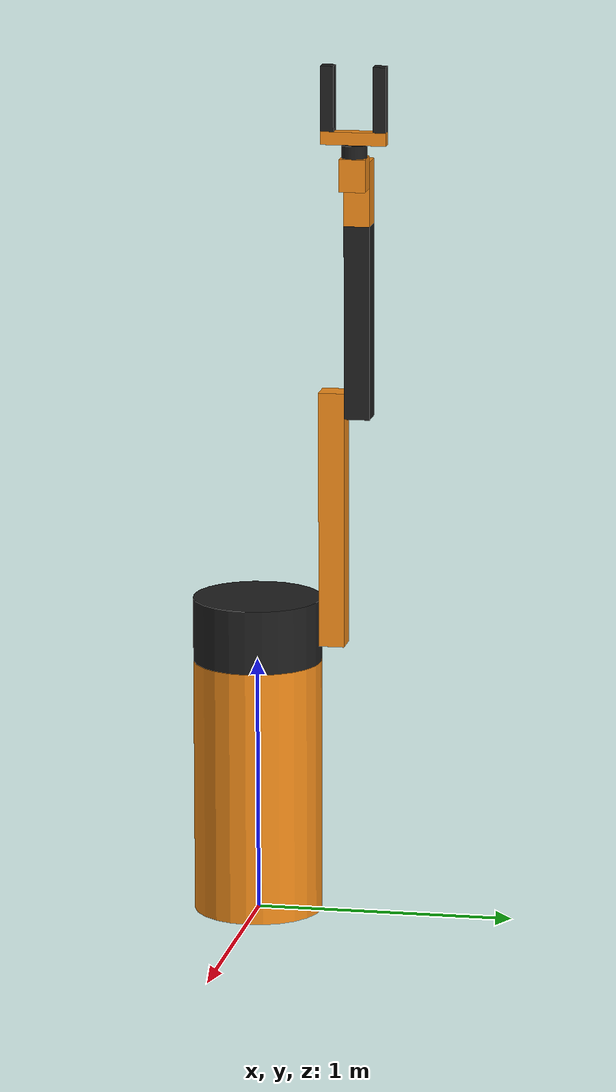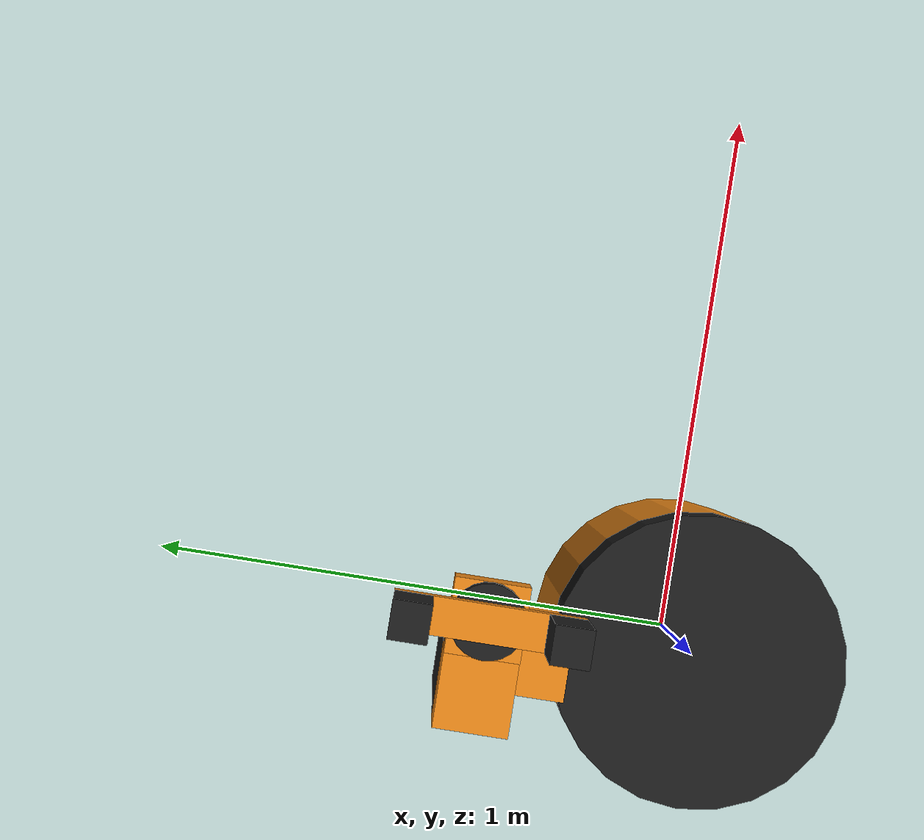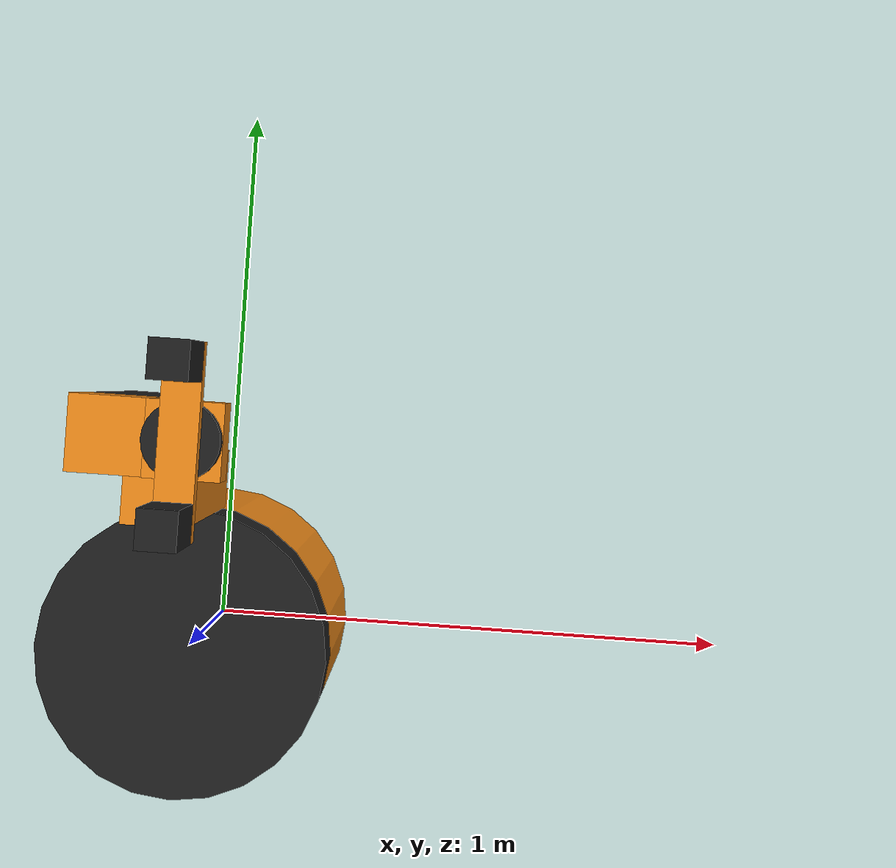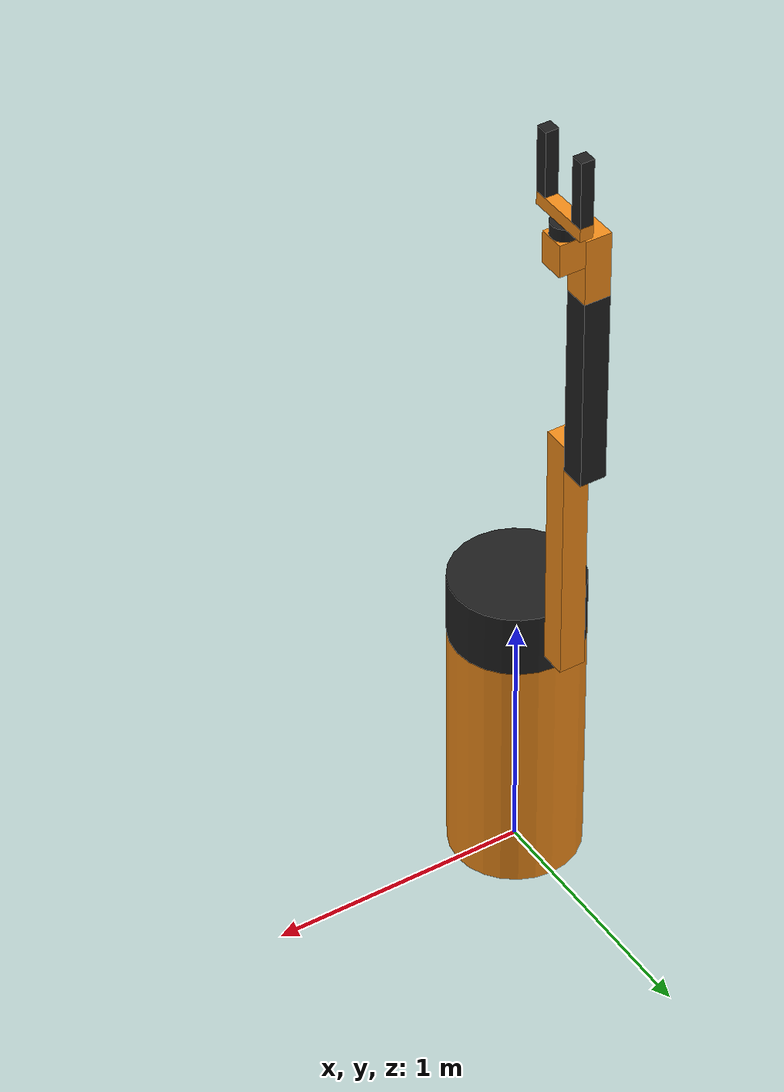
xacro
<?xml version="1.0"?>
<!-- Revolute-Revolute Manipulator -->
<robot name="manip_6_dof" xmlns:xacro="http://www.ros.org/wiki/xacro">

  <!-- Constants for robot dimensions -->
  <xacro:property name="PI" value="3.1415926535897931"/>
  <xacro:property name="mass" value="1" /> <!-- arbitrary value for mass -->
  <xacro:property name="w1" value="0.1" /> <!-- Square dimensions (widthxwidth) of beams -->
  <xacro:property name="l0" value="1" /> <!-- Link 3 -->
  <xacro:property name="l1" value="0.25" /> <!-- Link 1 -->
  <xacro:property name="l2" value="1" /> <!-- Link 2 -->
  <xacro:property name="l3" value="0.75" /> <!-- Link 3 -->
  <xacro:property name="l4" value="0.25" /> <!-- Link 3 -->
  <xacro:property name="l5" value="0.125" /> <!-- Link 3 -->
  <xacro:property name="l6" value="0.05" /> <!-- Link 3 -->
  <xacro:property name="r0" value="0.25" /> <!-- Link 3 -->
  <xacro:property name="r6" value="0.05" /> <!-- Link 3 -->
  <xacro:property name="l_palm" value="0.25" /> <!-- Link 3 -->
  <xacro:property name="w_palm" value="0.05" /> <!-- Link 3 -->
  <xacro:property name="camera_link" value="0.05" /> <!-- Size of square 'camera' box -->
  <xacro:property name="axel_offset" value="0.05" /> <!-- Space btw top of beam and the each joint -->

  <!-- Import all Gazebo-customization elements, including Gazebo colors -->
  <xacro:include filename="$(find manip_6_dof)/src/urdf/rrbot.gazebo" />
  <!-- Import Rviz colors -->
  <xacro:include filename="$(find manip_6_dof)/src/urdf/materials.xacro" />

  <!-- Used for fixing robot to Gazebo 'base_link' -->
  <link name="world"/>

  <joint name="base" type="fixed">
    <parent link="world"/>
    <child link="l0"/>
  </joint>

  <!-- Base Link -->
  <link name="l0">
    <collision>
      <origin xyz="0 0 ${l0/2}" rpy="0 0 0"/>
      <geometry>
  <cylinder length="${l0}" radius="${r0}" />
      </geometry>
    </collision>

    <visual>
      <origin xyz="0 0 ${l0/2}" rpy="0 0 0"/>
      <geometry>
  <cylinder length="${l0}" radius="${r0}" />
      </geometry>
      <material name="orange"/>
    </visual>

    <inertial>
      <origin xyz="0 0 ${l0/2}" rpy="0 0 0"/>
      <mass value="${mass}"/>
      <inertia
    ixx="${mass / 12.0 * (w1*w1 + l1*l1)}" ixy="0.0" ixz="0.0"
    iyy="${mass / 12.0 * (l1*l1 + w1*w1)}" iyz="0.0"
    izz="${mass / 12.0 * (w1*w1 + w1*w1)}"/>
    </inertial>
  </link>

  <joint name="j1" type="revolute">
    <parent link="l0"/>
    <child link="l1"/>
    <origin xyz="0 0 ${l0}" rpy="0 0 0"/>
    <limit effort="1000.0" lower="-3.14" upper="3.14" velocity="0.5"/>
    <axis xyz="0 0 1"/>
    <dynamics damping="0.7"/>
  </joint>

  <link name="l1">
    <collision>
      <origin xyz="0 0 ${l1/2}" rpy="0 0 0"/>
      <geometry>
  <cylinder length="${l1}" radius="${r0}" />
      </geometry>
    </collision>

    <visual>
      <origin xyz="0 0 ${l1/2}" rpy="0 0 0"/>
      <geometry>
  <cylinder length="${l1}" radius="${r0}" />
      </geometry>
      <material name="black"/>
    </visual>

    <inertial>
      <origin xyz="0 0 ${l1/2}" rpy="0 0 0"/>
      <mass value="${mass}"/>
      <inertia
    ixx="${mass / 12.0 * (w1*w1 + l1*l1)}" ixy="0.0" ixz="0.0"
    iyy="${mass / 12.0 * (l1*l1 + w1*w1)}" iyz="0.0"
    izz="${mass / 12.0 * (w1*w1 + w1*w1)}"/>
    </inertial>
  </link>

  <joint name="j2" type="revolute">
    <parent link="l1"/>
    <child link="l2"/>
    <origin xyz="0 ${r0+w1/2} ${l1/2}" rpy="0 0 0"/>
    <limit effort="1000.0" lower="-1.57" upper="1.57" velocity="0.5"/>

    <axis xyz="0 1 0"/>
    <dynamics damping="0.7"/>
  </joint>

  <!-- Top Link -->
  <link name="l2">
    <collision>
      <origin xyz="0 0 ${l2/2 - axel_offset}" rpy="0 0 0"/>
      <geometry>
  <box size="${w1} ${w1} ${l2}"/>
      </geometry>
    </collision>

    <visual>
      <origin xyz="0 0 ${l2/2 - axel_offset}" rpy="0 0 0"/>
      <geometry>
  <box size="${w1} ${w1} ${l2}"/>
      </geometry>
      <material name="orange"/>
    </visual>

    <inertial>
      <origin xyz="0 0 ${l2/2 - axel_offset}" rpy="0 0 0"/>
      <mass value="${mass}"/>
      <inertia
    ixx="${mass / 12.0 * (w1*w1 + l1*l1)}" ixy="0.0" ixz="0.0"
    iyy="${mass / 12.0 * (l1*l1 + w1*w1)}" iyz="0.0"
    izz="${mass / 12.0 * (w1*w1 + w1*w1)}"/>
    </inertial>
  </link>

<joint name="j3" type="revolute">
    <parent link="l2"/>
    <child link="l3"/>
    <origin xyz="0 ${w1} ${l2 - axel_offset*2}" rpy="0 0 0"/>
    <limit effort="1000.0" lower="-3" upper="3" velocity="0.5"/>

    <axis xyz="0 1 0"/>
    <dynamics damping="0.7"/>
  </joint>

  <!-- Top Link -->
  <link name="l3">
    <collision>
      <origin xyz="0 0 ${l3/2 - axel_offset}" rpy="0 0 0"/>
      <geometry>
  <box size="${w1} ${w1} ${l3}"/>
      </geometry>
    </collision>

    <visual>
      <origin xyz="0 0 ${l3/2 - axel_offset}" rpy="0 0 0"/>
      <geometry>
  <box size="${w1} ${w1} ${l3}"/>
      </geometry>
      <material name="black"/>
    </visual>

    <inertial>
      <origin xyz="0 0 ${l3/2 - axel_offset}" rpy="0 0 0"/>
      <mass value="${mass}"/>
      <inertia
    ixx="${mass / 12.0 * (w1*w1 + l1*l1)}" ixy="0.0" ixz="0.0"
    iyy="${mass / 12.0 * (l1*l1 + w1*w1)}" iyz="0.0"
    izz="${mass / 12.0 * (w1*w1 + w1*w1)}"/>
    </inertial>
  </link>

<joint name="j4" type="revolute">
    <parent link="l3"/>
    <child link="l4"/>
    <origin xyz="0 0 ${l3 - w1/2}" rpy="0 0 0"/>
    <limit effort="1000.0" lower="0.0" upper="3.15" velocity="0.5"/>

    <axis xyz="0 0 1"/>
    <dynamics damping="0.7"/>
  </joint>

  <!-- Top Link -->
  <link name="l4">
    <collision>
      <origin xyz="0 0 ${l4/2 }" rpy="0 0 0"/>
      <geometry>
  <box size="${w1} ${w1} ${l4}"/>
      </geometry>
    </collision>

    <visual>
      <origin xyz="0 0 ${l4/2}" rpy="0 0 0"/>
      <geometry>
  <box size="${w1} ${w1} ${l4}"/>
      </geometry>
      <material name="orange"/>
    </visual>

    <inertial>
      <origin xyz="0 0 ${l4/2}" rpy="0 0 0"/>
      <mass value="${mass}"/>
      <inertia
    ixx="${mass / 12.0 * (w1*w1 + l1*l1)}" ixy="0.0" ixz="0.0"
    iyy="${mass / 12.0 * (l1*l1 + w1*w1)}" iyz="0.0"
    izz="${mass / 12.0 * (w1*w1 + w1*w1)}"/>
    </inertial>
  </link>

  <joint name="j5" type="revolute">
    <parent link="l4"/>
    <child link="l5"/>
    <origin xyz="${w1} 0 ${l4-w1/2}" rpy="0 0 0"/>
    <axis xyz="1 0 0"/>
    <limit effort="1000.0" lower="-2.5" upper="2.5" velocity="0.5"/>

    <dynamics damping="0.7"/>
  </joint>

  <!-- Top Link -->
  <link name="l5">
    <collision>
      <origin xyz="0 0 ${l5/2 -w1/2 }" rpy="0 0 0"/>
      <geometry>
  <box size="${w1} ${w1} ${l5}"/>
      </geometry>
    </collision>

    <visual>
      <origin xyz="0 0 ${l5/2 -w1/2}" rpy="0 0 0"/>
      <geometry>
  <box size="${w1} ${w1} ${l5}"/>
      </geometry>
      <material name="orange"/>
    </visual>

    <inertial>
      <origin xyz="0 0 ${l5/2-w1/2}" rpy="0 0 0"/>
      <mass value="${mass}"/>
      <inertia
    ixx="${mass / 12.0 * (w1*w1 + l1*l1)}" ixy="0.0" ixz="0.0"
    iyy="${mass / 12.0 * (l1*l1 + w1*w1)}" iyz="0.0"
    izz="${mass / 12.0 * (w1*w1 + w1*w1)}"/>
    </inertial>

  </link>

  <joint name="j6" type="revolute">
    <parent link="l5"/>
    <child link="l6"/>
    <origin xyz="0 0 ${l5-w1/2}" rpy="0 0 1.57"/>
    <axis xyz="0 0 1"/>
    <limit effort="1000.0" lower="-3.14" upper="3.14" velocity="0.5"/>

    <dynamics damping="0.7"/>
  </joint>

  <!-- Top Link -->
  <link name="l6">

  <collision>
    <origin xyz="0 0 ${l6/2 }" rpy="0 0 0"/>
    <geometry>
<cylinder length="${l6}" radius="${r6}" />
    </geometry>
  </collision>

  <visual>
    <origin xyz="0 0 ${l6/2}" rpy="0 0 0"/>
    <geometry>
<cylinder length="${l6}" radius="${r6}" />
    </geometry>
    <material name="black"/>
  </visual>

  <inertial>
    <origin xyz="0 0 ${l6/2}" rpy="0 0 0"/>
    <mass value="${mass}"/>
    <inertia
  ixx="${mass / 12.0 * (w1*w1 + l1*l1)}" ixy="0.0" ixz="0.0"
  iyy="${mass / 12.0 * (l1*l1 + w1*w1)}" iyz="0.0"
  izz="${mass / 12.0 * (w1*w1 + w1*w1)}"/>
  </inertial>
  </link>

  <joint name = "griper" type="fixed">
    <parent link="l6"/>
    <child link="arm_palm"/>
    <origin xyz="0 0 ${l6}" rpy="0 0 0"/>
  </joint>

  <link name="arm_palm">
    <collision>
      <origin xyz="0 0 ${w_palm/2}" rpy="0 0 0"/>
      <geometry>
  <box size="${l_palm} ${w_palm} ${w_palm}"/>
      </geometry>
    </collision>

    <visual>
      <origin xyz="0 0 ${w_palm/2}" rpy="0 0 0"/>
      <geometry>
        <box size="${l_palm} ${w_palm} ${w_palm}"/>
      </geometry>
      <material name="orange"/>
    </visual>

    <inertial>
      <origin xyz="0 0 ${l3/2 - axel_offset}" rpy="0 0 0"/>
      <mass value="${mass}"/>
      <inertia
    ixx="${mass / 12.0 * (w1*w1 + l1*l1)}" ixy="0.0" ixz="0.0"
    iyy="${mass / 12.0 * (l1*l1 + w1*w1)}" iyz="0.0"
    izz="${mass / 12.0 * (w1*w1 + w1*w1)}"/>
    </inertial>
  </link>

  <joint name = "L_finger" type="prismatic">
    <parent link="arm_palm"/>
    <child link="LF"/>
    <origin xyz="${l_palm/2 - w_palm/2} 0 ${w_palm}" rpy="0 0 3.14"/>
    <axis xyz="1 0 0"/>
    <limit effort="1000.0" lower="0" upper="${l_palm/3}" velocity="0.5"/>
    <dynamics damping="0.7"/>
  </joint>

  <link name="LF">
    <collision>
      <origin xyz="0 0 ${l_palm/2}" rpy="0 0 0"/>
      <geometry>
  <box size="${w_palm} ${w_palm} ${l_palm}"/>
      </geometry>
    </collision>

    <visual>
      <origin xyz="0 0 ${l_palm/2}" rpy="0 0 0"/>
      <geometry>
        <box size="${w_palm} ${w_palm} ${l_palm}"/>
      </geometry>
      <material name="black"/>
    </visual>

    <inertial>
      <origin xyz="0 0 ${l3/2 - axel_offset}" rpy="0 0 0"/>
      <mass value="${mass}"/>
      <inertia
    ixx="${mass / 12.0 * (w1*w1 + l1*l1)}" ixy="0.0" ixz="0.0"
    iyy="${mass / 12.0 * (l1*l1 + w1*w1)}" iyz="0.0"
    izz="${mass / 12.0 * (w1*w1 + w1*w1)}"/>
    </inertial>
  </link>

  <joint name = "R_finger" type="prismatic">
    <parent link="arm_palm"/>
    <child link="RF"/>
    <origin xyz="${-l_palm/2 + w_palm/2} 0 ${w_palm}" rpy="0 0 0"/>
    <axis xyz="1 0 0"/>
    <limit effort="1000.0" lower="0" upper="${l_palm/3}" velocity="0.5"/>
    <dynamics damping="0.7"/>
  </joint>

  <link name="RF">
    <collision>
      <origin xyz="0 0 ${l_palm/2}" rpy="0 0 0"/>
      <geometry>
  <box size="${w_palm} ${w_palm} ${l_palm}"/>
      </geometry>
    </collision>

    <visual>
      <origin xyz="0 0 ${l_palm/2}" rpy="0 0 0"/>
      <geometry>
        <box size="${w_palm} ${w_palm} ${l_palm}"/>
      </geometry>
      <material name="black"/>
    </visual>

    <inertial>
      <origin xyz="0 0 ${l3/2 - axel_offset}" rpy="0 0 0"/>
      <mass value="${mass}"/>
      <inertia
    ixx="${mass / 12.0 * (w1*w1 + l1*l1)}" ixy="0.0" ixz="0.0"
    iyy="${mass / 12.0 * (l1*l1 + w1*w1)}" iyz="0.0"
    izz="${mass / 12.0 * (w1*w1 + w1*w1)}"/>
    </inertial>
  </link>

  <transmission name="tran1">
    <type>transmission_interface/SimpleTransmission</type>
    <joint name="j1">
      <hardwareInterface>hardware_interface/EffortJointInterface</hardwareInterface>
    </joint>
    <actuator name="motor1">
      <hardwareInterface>hardware_interface/EffortJointInterface</hardwareInterface>
      <mechanicalReduction>1</mechanicalReduction>
    </actuator>
  </transmission>
    <transmission name="tran2">
    <type>transmission_interface/SimpleTransmission</type>
    <joint name="j2">
      <hardwareInterface>hardware_interface/EffortJointInterface</hardwareInterface>
    </joint>
    <actuator name="motor2">
      <hardwareInterface>hardware_interface/EffortJointInterface</hardwareInterface>
      <mechanicalReduction>1</mechanicalReduction>
    </actuator>
  </transmission>
    <transmission name="tran3">
    <type>transmission_interface/SimpleTransmission</type>
    <joint name="j3">
      <hardwareInterface>hardware_interface/EffortJointInterface</hardwareInterface>
    </joint>
    <actuator name="motor3">
      <hardwareInterface>hardware_interface/EffortJointInterface</hardwareInterface>
      <mechanicalReduction>1</mechanicalReduction>
    </actuator>
  </transmission>
    <transmission name="tran4">
    <type>transmission_interface/SimpleTransmission</type>
    <joint name="j4">
      <hardwareInterface>hardware_interface/EffortJointInterface</hardwareInterface>
    </joint>
    <actuator name="motor4">
      <hardwareInterface>hardware_interface/EffortJointInterface</hardwareInterface>
      <mechanicalReduction>1</mechanicalReduction>
    </actuator>
  </transmission>

  <transmission name="tran5">
    <type>transmission_interface/SimpleTransmission</type>
    <joint name="j5">
      <hardwareInterface>hardware_interface/EffortJointInterface</hardwareInterface>
    </joint>
    <actuator name="motor5">
      <hardwareInterface>hardware_interface/EffortJointInterface</hardwareInterface>
      <mechanicalReduction>1</mechanicalReduction>
    </actuator>
  </transmission>
  <transmission name="tran6">
    <type>transmission_interface/SimpleTransmission</type>
    <joint name="j6">
      <hardwareInterface>hardware_interface/EffortJointInterface</hardwareInterface>
    </joint>
    <actuator name="motor6">
      <hardwareInterface>hardware_interface/EffortJointInterface</hardwareInterface>
      <mechanicalReduction>1</mechanicalReduction>
    </actuator>
  </transmission>
</robot>
